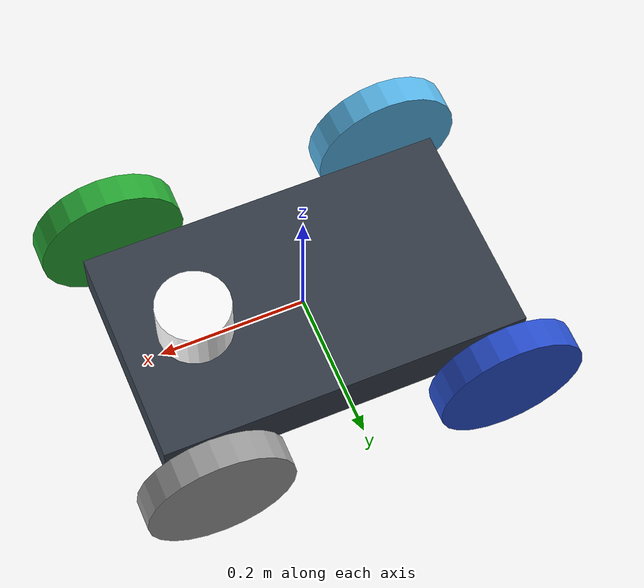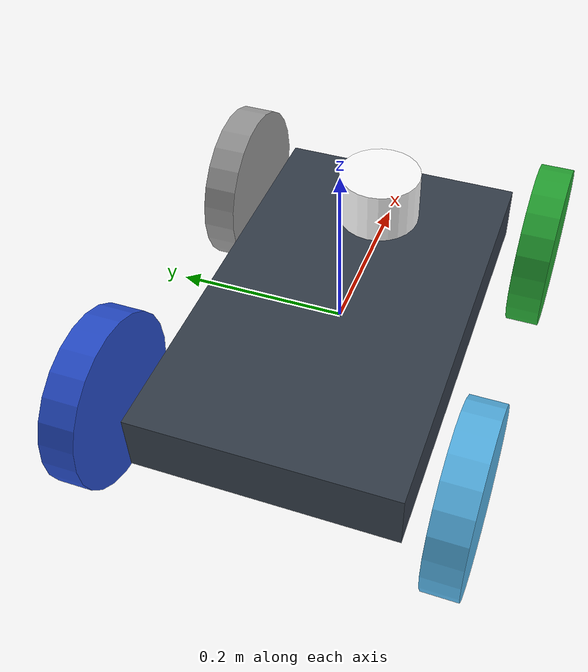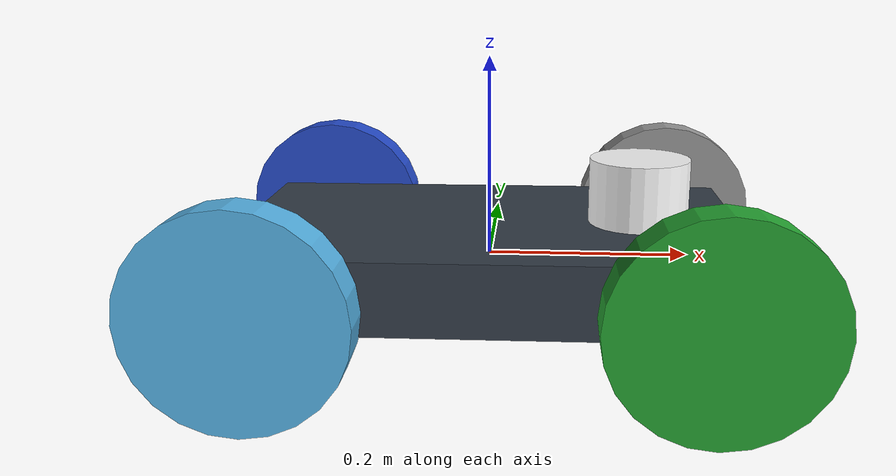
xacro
<?xml version="1.0"?>
<robot name="m4wr_description" xmlns:xacro="http://www.ros.org/wiki/xacro">

<!-- http://wiki.ros.org/urdf/Tutorials/Using%20Xacro%20to%20Clean%20Up%20a%20URDF%20File -->
<!--LInk with other code files-->
<xacro:include filename = "$(find m4wr_description)/urdf/materials.xacro"/>
<xacro:include filename = "$(find m4wr_description)/urdf/m4wr.gazebo"/>
<xacro:include filename="$(find m4wr_description)/urdf/macros.xacro" />

<!-- Includes of link joint wheels macros-->
<xacro:link_wheel name="link_right_wheel_front" />
<xacro:link_wheel name="link_left_wheel_front" />
<xacro:link_wheel name="link_right_wheel_back" />
<xacro:link_wheel name="link_left_wheel_back" />

<!-- Includes of joint wheels macros to link the wheel with the rolling base-->
<!-- I HAVE SOME DOUBT IN THE CALCULATION OF RIGHT WHEEL FRONTPART -->
<!--I have check the originals of right wheel front, bcz I"m not sure of it -->
<xacro:joint_wheel name="joint_right_wheel_front" child="link_right_wheel_front" parent="link_base_roulante" origin_xyz="-0.2 0.20 0"/>
<!--I have check the originals of left wheel front, bcz I"m not sure of it -->
<xacro:joint_wheel name="joint_left_wheel_front" child="link_left_wheel_front" parent="link_base_roulante" origin_xyz="-0.2 -0.20 0"/>
<xacro:joint_wheel name="joint_right_wheel_back" child="link_right_wheel_back" parent="link_base_roulante" origin_xyz="0.2 0.20 0"/>
<xacro:joint_wheel name="joint_left_wheel_back" child="link_left_wheel_back" parent="link_base_roulante" origin_xyz="0.2 -0.20 0"/>

  <link name="base_footprint"/>

  <joint name="joint_base_roulante" type="fixed">
    <parent link="base_footprint"/>
    <child link="link_base_roulante" />
  </joint>

  <link name="link_base_roulante">
    <!-- For more details to understand , check this link:  http://wiki.ros.org/xacro-->
    <pose>0 0 0.1 0 0 0</pose>
    <inertial>
        <!-- The approximate mass of the robot is 5 Kg-->
        <mass value="5"/>
        <origin rpy="0 0 0" xyz="0 0 0.1"/>
        <!-- Look at the documentation above to understanc the mathematic calculation of the inertia-->
        <inertia ixx="0.0395416666667" ixy="0" ixz="0" iyy="0.106208333333" iyz="0" izz="0.106208333333"/>
    </inertial>
    <collision name="collision_base_roulante">
        <geometry>
            <box size="0.5 0.3 0.07"/>
        </geometry>
    </collision>
    <visual>
        <origin rpy="0 0 0" xyz="0 0 0"/>
        <geometry>
            <box size="0.5 0.3 0.07"/>
        </geometry>
        <material name="blue"/>
    </visual>
  </link>

 <link name="sensor_laser">
        <inertial>
            <origin xyz="0 0 0" rpy="0 0 0" />
            <mass value="1" />
            <xacro:cylinder_inertia mass="1" r="0.05" l="0.1" />
        </inertial>

        <visual>
            <origin xyz="0 0 0" rpy="0 0 0" />
            <geometry>
                <cylinder radius="0.05" length="0.1"/>
            </geometry>
            <material name="white" />
        </visual>

        <collision>
            <origin xyz="0 0 0" rpy="0 0 0"/>
            <geometry>
                <cylinder radius="0.05" length="0.1"/>
            </geometry>
        </collision>
  </link>

  <joint name="joint_sensor_laser" type="fixed">
    <origin xyz="0.15 0 0.05" rpy="0 0 0"/>
    <parent link="link_base_roulante"/>
    <child link="sensor_laser"/>
  </joint>

</robot>

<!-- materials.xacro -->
<robot>

<!-- material properties used in the robot-->
<material name="black">
    <color rgba="0.0 0.0 0.0 1.0"/>
  </material>
  <material name="blue">
    <color rgba="0.203125 0.23828125 0.28515625 1.0"/>
  </material>
  <material name="green">
    <color rgba="0.0 0.8 0.0 1.0"/>
  </material>
  <material name="grey">
    <color rgba="0.2 0.2 0.2 1.0"/>
  </material>
  <material name="orange">
    <color rgba="1.0 0.423529411765 0.0392156862745 1.0"/>
  </material>
  <material name="brown">
    <color rgba="0.870588235294 0.811764705882 0.764705882353 1.0"/>
  </material>
  <material name="red">
    <color rgba="0.80078125 0.12890625 0.1328125 1.0"/>
  </material>
  <material name="white">
    <color rgba="1.0 1.0 1.0 1.0"/>
  </material>
  </robot>

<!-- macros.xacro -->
<robot xmlns:xacro="http://www.ros.org/wiki/xacro">
    <!--This code is created to simplify the way we are defining the wheels of our robot-->
    <!-- The Properties of each wheels, for this case , they are the same , that's why I used the macros to avoid repetition -->

    <xacro:macro name="link_wheel" params="name">
        <!--http://wiki.ros.org/urdf/XML/link-->
        <link name="${name}">

            <inertial>
                <mass value="0.2"/>
                <origin rpy="0 1.5707 1.5707" xyz="0 0 0"/>
                <inertia ixx="0.000526666666667" ixy="0" ixz="0" iyy="0.000526666666667" iyz="0" izz="0.001"/>
            </inertial>
            <collision name="link_right_wheel_collision">
                <origin rpy="0 1.5707 1.5707" xyz="0 0 0"/>
                <geometry>
                    <cylinder length="0.04" radius="0.1"/>
                </geometry>
            </collision>
            <visual name="${name}_visual">
                <origin rpy="0 1.5707 1.5707" xyz="0 0 0"/>
                <geometry>
                    <cylinder length="0.04" radius="0.1"/>
                </geometry>
            </visual>
        </link>
    </xacro:macro>

    <!-- The joint wheel here , is used to attach the wheels to the rolling base -->

    <xacro:macro name="joint_wheel" params="name child parent origin_xyz">
        <!--http://wiki.ros.org/urdf/XML/joint-->
        <joint name="${name}" type="continuous">
                <origin rpy="0 0 0" xyz="${origin_xyz}"/>
                <child link="${child}"/>
                <parent link="${parent}"/>
                <axis rpy="0 0 0" xyz="0 1 0"/>
                <limit effort="10000" velocity="1000"/>
                <joint_properties damping="1.0" friction="1.0"/>
        </joint>
    </xacro:macro>

   <!--to describe our cylinder macro for the laser scan-->
    <xacro:macro name="cylinder_inertia" params="mass r l">
      <inertia  ixx="${mass*(3*r*r+l*l)/12}" ixy = "0" ixz = "0"
                iyy="${mass*(3*r*r+l*l)/12}" iyz = "0"
                izz="${mass*(r*r)/2}" />
    </xacro:macro>

</robot>
